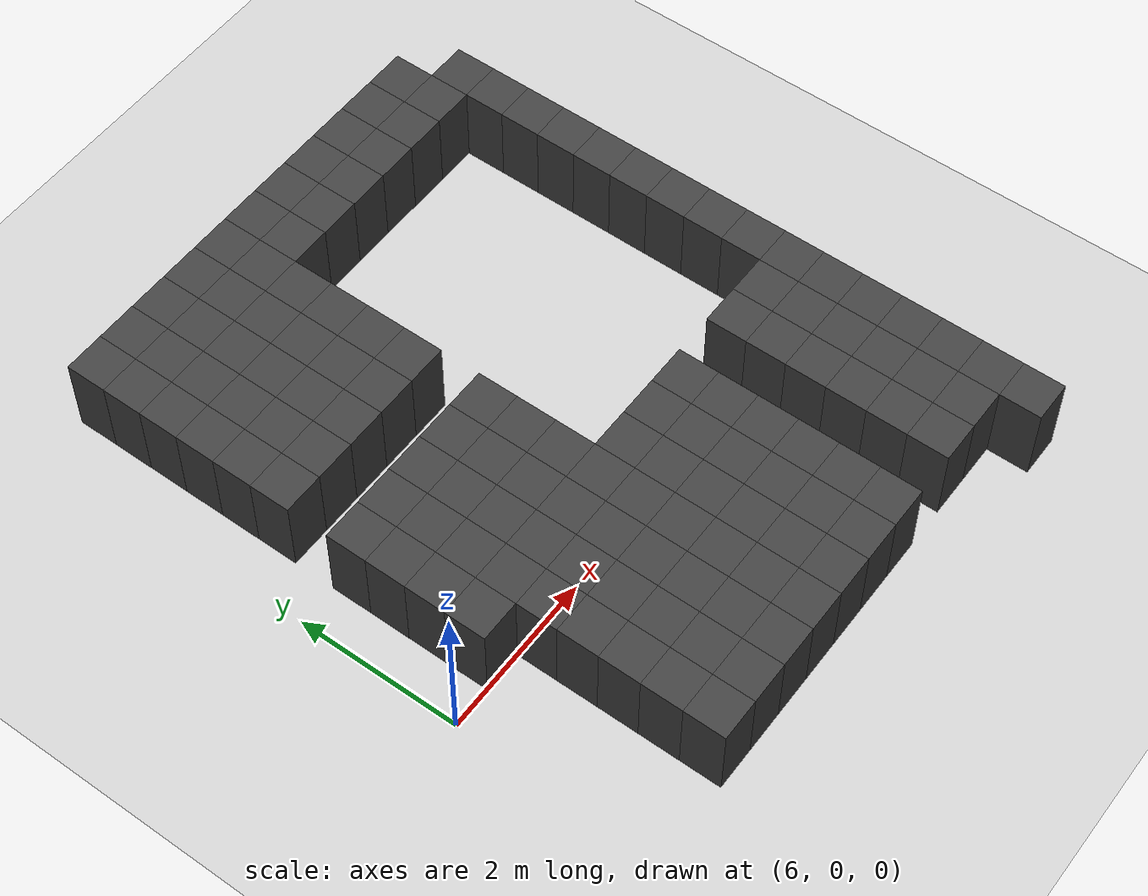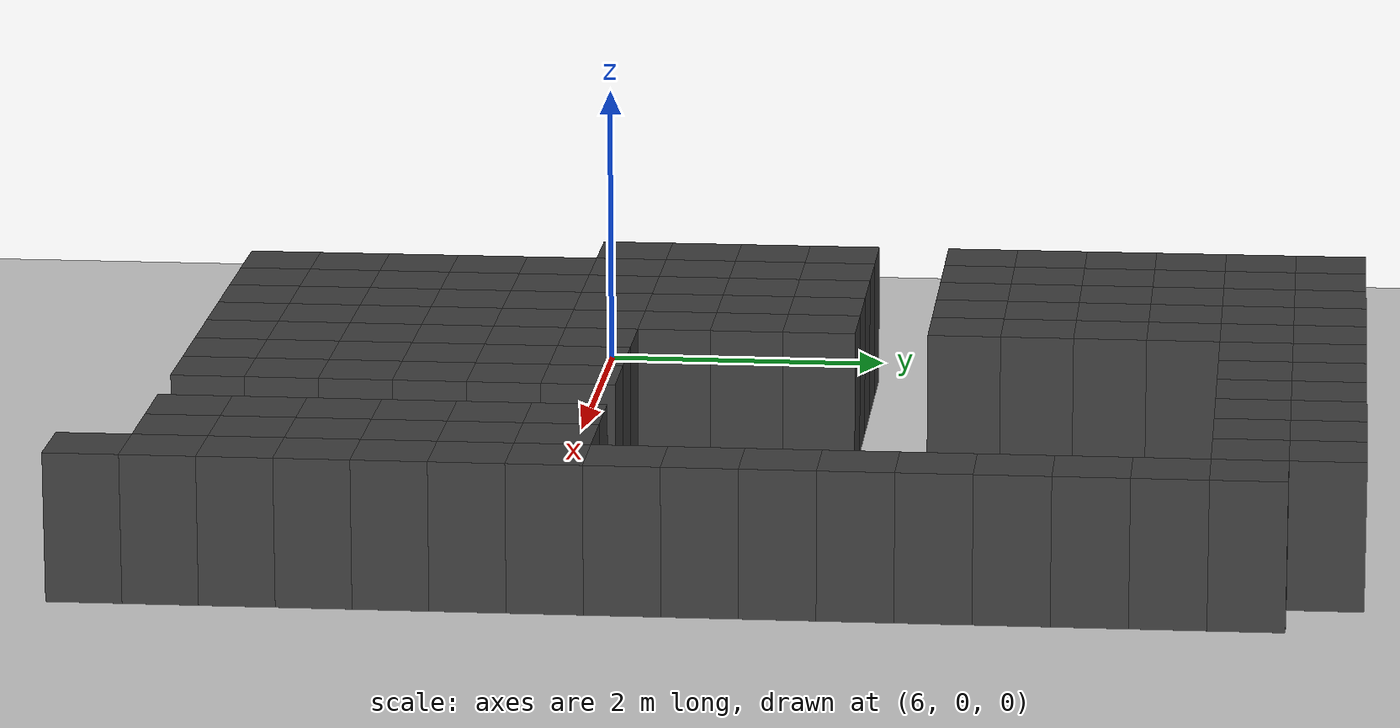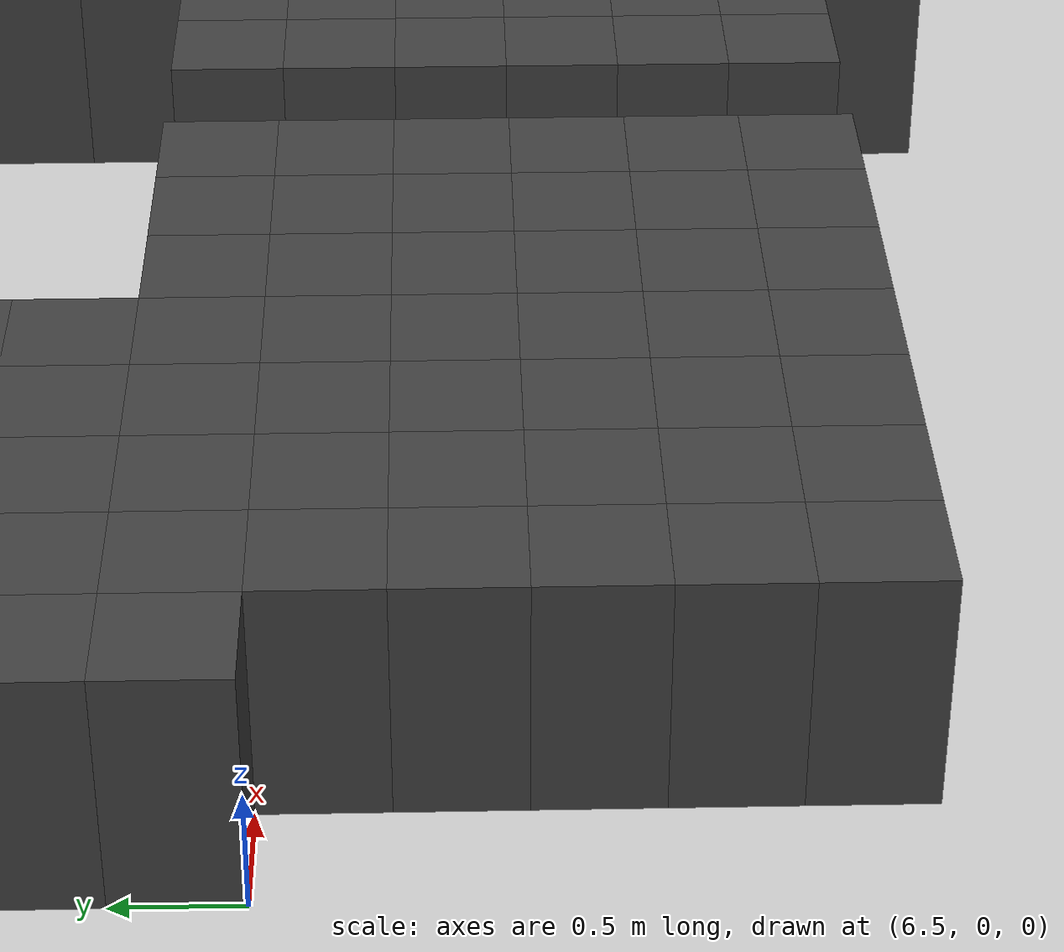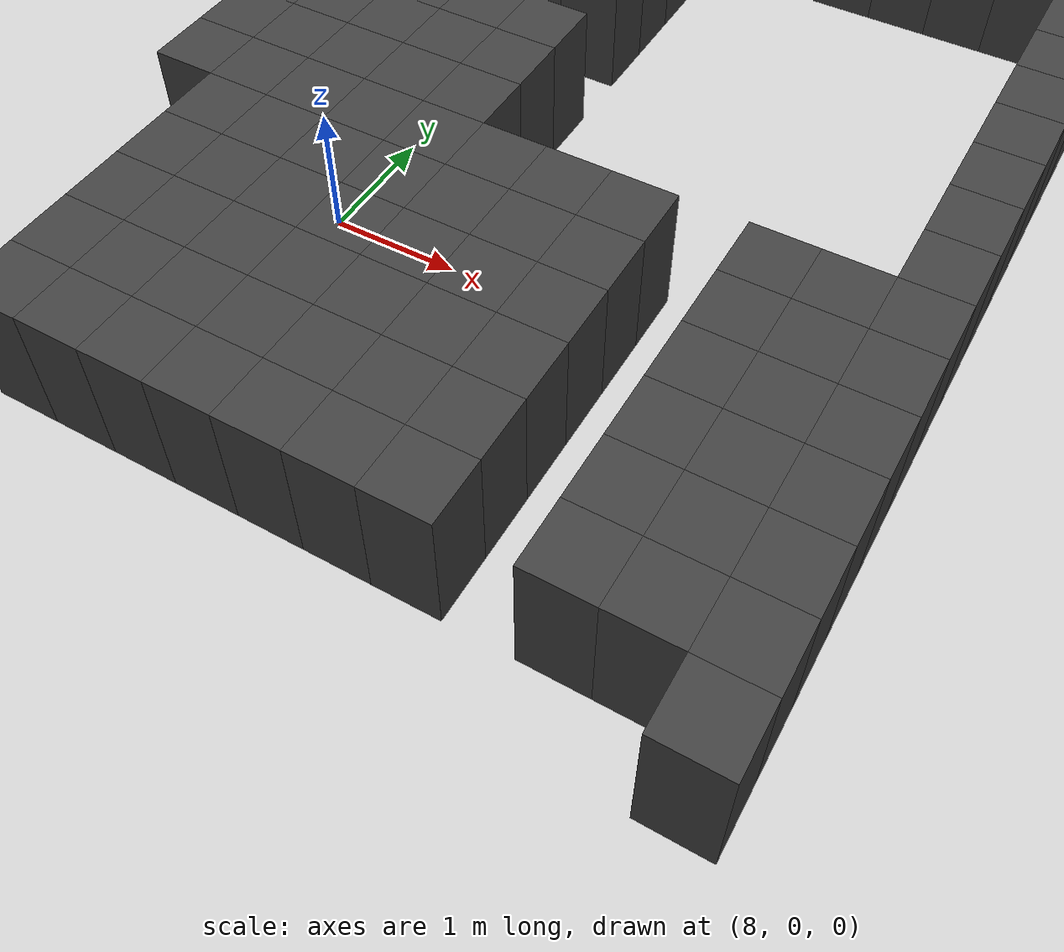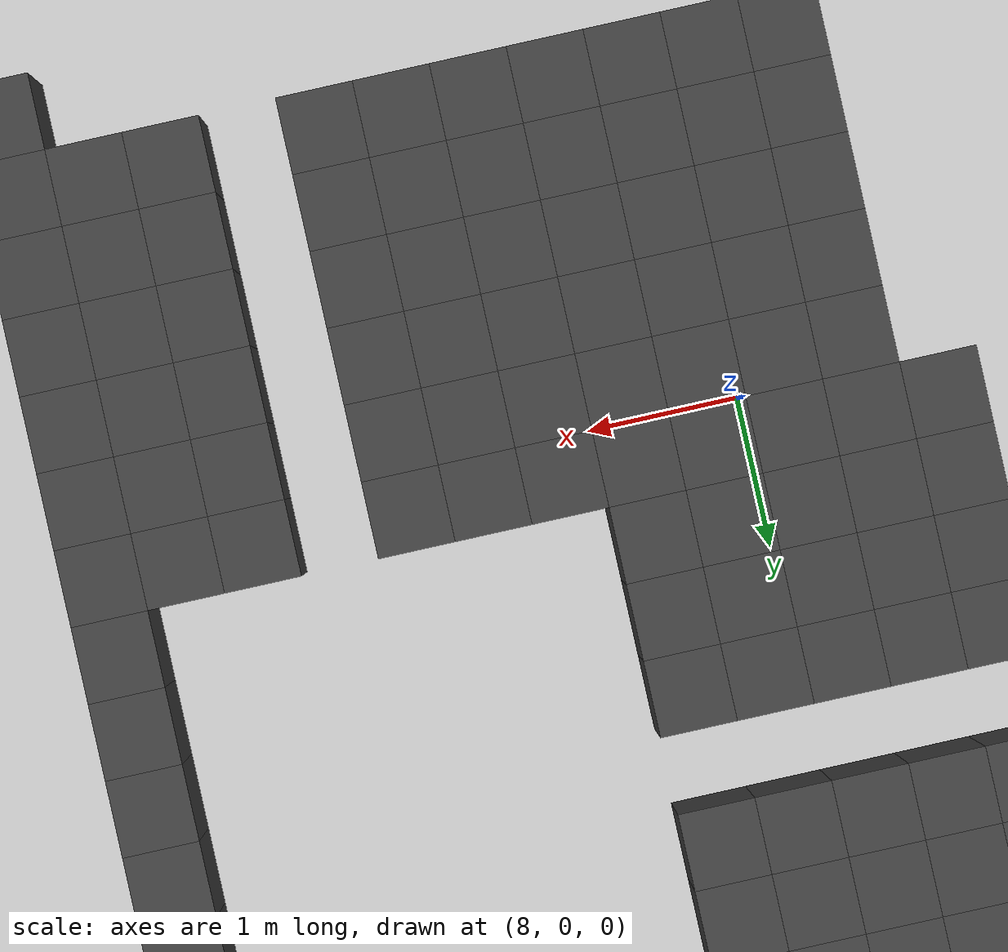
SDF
<sdf version="1.7">
 <world name="map_14735">
  <model name="ground_plane">
   <static>true</static>
   <link name="link">
    <collision name="collision">
     <geometry><plane><normal>0 0 1</normal><size>200 200</size></plane></geometry>
    </collision>
    <visual name="visual">
     <geometry><plane><normal>0 0 1</normal><size>200 200</size></plane></geometry>
     <material><ambient>0.8 0.8 0.8 1</ambient><diffuse>0.8 0.8 0.8 1</diffuse></material>
    </visual>
   </link>
  </model>
  <model name="maze_environment">
   <static>true</static>
   <link name="wall_448">
    <pose>6.750 5.250 0.500 0 0 0</pose>
    <collision name="col"><geometry><box><size>0.5 0.5 1.0</size></box></geometry></collision>
    <visual name="vis">
     <geometry><box><size>0.5 0.5 1.0</size></box></geometry>
     <material><ambient>0.15 0.15 0.15 1</ambient><diffuse>0.25 0.25 0.25 1</diffuse></material>
    </visual>
   </link>
   <link name="wall_449">
    <pose>7.250 5.250 0.500 0 0 0</pose>
    <collision name="col"><geometry><box><size>0.5 0.5 1.0</size></box></geometry></collision>
    <visual name="vis">
     <geometry><box><size>0.5 0.5 1.0</size></box></geometry>
     <material><ambient>0.15 0.15 0.15 1</ambient><diffuse>0.25 0.25 0.25 1</diffuse></material>
    </visual>
   </link>
   <link name="wall_450">
    <pose>7.750 5.250 0.500 0 0 0</pose>
    <collision name="col"><geometry><box><size>0.5 0.5 1.0</size></box></geometry></collision>
    <visual name="vis">
     <geometry><box><size>0.5 0.5 1.0</size></box></geometry>
     <material><ambient>0.15 0.15 0.15 1</ambient><diffuse>0.25 0.25 0.25 1</diffuse></material>
    </visual>
   </link>
   <link name="wall_451">
    <pose>8.250 5.250 0.500 0 0 0</pose>
    <collision name="col"><geometry><box><size>0.5 0.5 1.0</size></box></geometry></collision>
    <visual name="vis">
     <geometry><box><size>0.5 0.5 1.0</size></box></geometry>
     <material><ambient>0.15 0.15 0.15 1</ambient><diffuse>0.25 0.25 0.25 1</diffuse></material>
    </visual>
   </link>
   <link name="wall_452">
    <pose>8.750 5.250 0.500 0 0 0</pose>
    <collision name="col"><geometry><box><size>0.5 0.5 1.0</size></box></geometry></collision>
    <visual name="vis">
     <geometry><box><size>0.5 0.5 1.0</size></box></geometry>
     <material><ambient>0.15 0.15 0.15 1</ambient><diffuse>0.25 0.25 0.25 1</diffuse></material>
    </visual>
   </link>
   <link name="wall_453">
    <pose>9.250 5.250 0.500 0 0 0</pose>
    <collision name="col"><geometry><box><size>0.5 0.5 1.0</size></box></geometry></collision>
    <visual name="vis">
     <geometry><box><size>0.5 0.5 1.0</size></box></geometry>
     <material><ambient>0.15 0.15 0.15 1</ambient><diffuse>0.25 0.25 0.25 1</diffuse></material>
    </visual>
   </link>
   <link name="wall_454">
    <pose>9.750 5.250 0.500 0 0 0</pose>
    <collision name="col"><geometry><box><size>0.5 0.5 1.0</size></box></geometry></collision>
    <visual name="vis">
     <geometry><box><size>0.5 0.5 1.0</size></box></geometry>
     <material><ambient>0.15 0.15 0.15 1</ambient><diffuse>0.25 0.25 0.25 1</diffuse></material>
    </visual>
   </link>
   <link name="wall_455">
    <pose>10.250 5.250 0.500 0 0 0</pose>
    <collision name="col"><geometry><box><size>0.5 0.5 1.0</size></box></geometry></collision>
    <visual name="vis">
     <geometry><box><size>0.5 0.5 1.0</size></box></geometry>
     <material><ambient>0.15 0.15 0.15 1</ambient><diffuse>0.25 0.25 0.25 1</diffuse></material>
    </visual>
   </link>
   <link name="wall_456">
    <pose>10.750 5.250 0.500 0 0 0</pose>
    <collision name="col"><geometry><box><size>0.5 0.5 1.0</size></box></geometry></collision>
    <visual name="vis">
     <geometry><box><size>0.5 0.5 1.0</size></box></geometry>
     <material><ambient>0.15 0.15 0.15 1</ambient><diffuse>0.25 0.25 0.25 1</diffuse></material>
    </visual>
   </link>
   <link name="wall_457">
    <pose>11.250 5.250 0.500 0 0 0</pose>
    <collision name="col"><geometry><box><size>0.5 0.5 1.0</size></box></geometry></collision>
    <visual name="vis">
     <geometry><box><size>0.5 0.5 1.0</size></box></geometry>
     <material><ambient>0.15 0.15 0.15 1</ambient><diffuse>0.25 0.25 0.25 1</diffuse></material>
    </visual>
   </link>
   <link name="wall_458">
    <pose>11.750 5.250 0.500 0 0 0</pose>
    <collision name="col"><geometry><box><size>0.5 0.5 1.0</size></box></geometry></collision>
    <visual name="vis">
     <geometry><box><size>0.5 0.5 1.0</size></box></geometry>
     <material><ambient>0.15 0.15 0.15 1</ambient><diffuse>0.25 0.25 0.25 1</diffuse></material>
    </visual>
   </link>
   <link name="wall_488">
    <pose>6.750 4.750 0.500 0 0 0</pose>
    <collision name="col"><geometry><box><size>0.5 0.5 1.0</size></box></geometry></collision>
    <visual name="vis">
     <geometry><box><size>0.5 0.5 1.0</size></box></geometry>
     <material><ambient>0.15 0.15 0.15 1</ambient><diffuse>0.25 0.25 0.25 1</diffuse></material>
    </visual>
   </link>
   <link name="wall_489">
    <pose>7.250 4.750 0.500 0 0 0</pose>
    <collision name="col"><geometry><box><size>0.5 0.5 1.0</size></box></geometry></collision>
    <visual name="vis">
     <geometry><box><size>0.5 0.5 1.0</size></box></geometry>
     <material><ambient>0.15 0.15 0.15 1</ambient><diffuse>0.25 0.25 0.25 1</diffuse></material>
    </visual>
   </link>
   <link name="wall_490">
    <pose>7.750 4.750 0.500 0 0 0</pose>
    <collision name="col"><geometry><box><size>0.5 0.5 1.0</size></box></geometry></collision>
    <visual name="vis">
     <geometry><box><size>0.5 0.5 1.0</size></box></geometry>
     <material><ambient>0.15 0.15 0.15 1</ambient><diffuse>0.25 0.25 0.25 1</diffuse></material>
    </visual>
   </link>
   <link name="wall_491">
    <pose>8.250 4.750 0.500 0 0 0</pose>
    <collision name="col"><geometry><box><size>0.5 0.5 1.0</size></box></geometry></collision>
    <visual name="vis">
     <geometry><box><size>0.5 0.5 1.0</size></box></geometry>
     <material><ambient>0.15 0.15 0.15 1</ambient><diffuse>0.25 0.25 0.25 1</diffuse></material>
    </visual>
   </link>
   <link name="wall_492">
    <pose>8.750 4.750 0.500 0 0 0</pose>
    <collision name="col"><geometry><box><size>0.5 0.5 1.0</size></box></geometry></collision>
    <visual name="vis">
     <geometry><box><size>0.5 0.5 1.0</size></box></geometry>
     <material><ambient>0.15 0.15 0.15 1</ambient><diffuse>0.25 0.25 0.25 1</diffuse></material>
    </visual>
   </link>
   <link name="wall_493">
    <pose>9.250 4.750 0.500 0 0 0</pose>
    <collision name="col"><geometry><box><size>0.5 0.5 1.0</size></box></geometry></collision>
    <visual name="vis">
     <geometry><box><size>0.5 0.5 1.0</size></box></geometry>
     <material><ambient>0.15 0.15 0.15 1</ambient><diffuse>0.25 0.25 0.25 1</diffuse></material>
    </visual>
   </link>
   <link name="wall_494">
    <pose>9.750 4.750 0.500 0 0 0</pose>
    <collision name="col"><geometry><box><size>0.5 0.5 1.0</size></box></geometry></collision>
    <visual name="vis">
     <geometry><box><size>0.5 0.5 1.0</size></box></geometry>
     <material><ambient>0.15 0.15 0.15 1</ambient><diffuse>0.25 0.25 0.25 1</diffuse></material>
    </visual>
   </link>
   <link name="wall_495">
    <pose>10.250 4.750 0.500 0 0 0</pose>
    <collision name="col"><geometry><box><size>0.5 0.5 1.0</size></box></geometry></collision>
    <visual name="vis">
     <geometry><box><size>0.5 0.5 1.0</size></box></geometry>
     <material><ambient>0.15 0.15 0.15 1</ambient><diffuse>0.25 0.25 0.25 1</diffuse></material>
    </visual>
   </link>
   <link name="wall_496">
    <pose>10.750 4.750 0.500 0 0 0</pose>
    <collision name="col"><geometry><box><size>0.5 0.5 1.0</size></box></geometry></collision>
    <visual name="vis">
     <geometry><box><size>0.5 0.5 1.0</size></box></geometry>
     <material><ambient>0.15 0.15 0.15 1</ambient><diffuse>0.25 0.25 0.25 1</diffuse></material>
    </visual>
   </link>
   <link name="wall_497">
    <pose>11.250 4.750 0.500 0 0 0</pose>
    <collision name="col"><geometry><box><size>0.5 0.5 1.0</size></box></geometry></collision>
    <visual name="vis">
     <geometry><box><size>0.5 0.5 1.0</size></box></geometry>
     <material><ambient>0.15 0.15 0.15 1</ambient><diffuse>0.25 0.25 0.25 1</diffuse></material>
    </visual>
   </link>
   <link name="wall_498">
    <pose>11.750 4.750 0.500 0 0 0</pose>
    <collision name="col"><geometry><box><size>0.5 0.5 1.0</size></box></geometry></collision>
    <visual name="vis">
     <geometry><box><size>0.5 0.5 1.0</size></box></geometry>
     <material><ambient>0.15 0.15 0.15 1</ambient><diffuse>0.25 0.25 0.25 1</diffuse></material>
    </visual>
   </link>
   <link name="wall_499">
    <pose>12.250 4.750 0.500 0 0 0</pose>
    <collision name="col"><geometry><box><size>0.5 0.5 1.0</size></box></geometry></collision>
    <visual name="vis">
     <geometry><box><size>0.5 0.5 1.0</size></box></geometry>
     <material><ambient>0.15 0.15 0.15 1</ambient><diffuse>0.25 0.25 0.25 1</diffuse></material>
    </visual>
   </link>
   <link name="wall_525">
    <pose>6.750 4.250 0.500 0 0 0</pose>
    <collision name="col"><geometry><box><size>0.5 0.5 1.0</size></box></geometry></collision>
    <visual name="vis">
     <geometry><box><size>0.5 0.5 1.0</size></box></geometry>
     <material><ambient>0.15 0.15 0.15 1</ambient><diffuse>0.25 0.25 0.25 1</diffuse></material>
    </visual>
   </link>
   <link name="wall_526">
    <pose>7.250 4.250 0.500 0 0 0</pose>
    <collision name="col"><geometry><box><size>0.5 0.5 1.0</size></box></geometry></collision>
    <visual name="vis">
     <geometry><box><size>0.5 0.5 1.0</size></box></geometry>
     <material><ambient>0.15 0.15 0.15 1</ambient><diffuse>0.25 0.25 0.25 1</diffuse></material>
    </visual>
   </link>
   <link name="wall_527">
    <pose>7.750 4.250 0.500 0 0 0</pose>
    <collision name="col"><geometry><box><size>0.5 0.5 1.0</size></box></geometry></collision>
    <visual name="vis">
     <geometry><box><size>0.5 0.5 1.0</size></box></geometry>
     <material><ambient>0.15 0.15 0.15 1</ambient><diffuse>0.25 0.25 0.25 1</diffuse></material>
    </visual>
   </link>
   <link name="wall_528">
    <pose>8.250 4.250 0.500 0 0 0</pose>
    <collision name="col"><geometry><box><size>0.5 0.5 1.0</size></box></geometry></collision>
    <visual name="vis">
     <geometry><box><size>0.5 0.5 1.0</size></box></geometry>
     <material><ambient>0.15 0.15 0.15 1</ambient><diffuse>0.25 0.25 0.25 1</diffuse></material>
    </visual>
   </link>
   <link name="wall_529">
    <pose>8.750 4.250 0.500 0 0 0</pose>
    <collision name="col"><geometry><box><size>0.5 0.5 1.0</size></box></geometry></collision>
    <visual name="vis">
     <geometry><box><size>0.5 0.5 1.0</size></box></geometry>
     <material><ambient>0.15 0.15 0.15 1</ambient><diffuse>0.25 0.25 0.25 1</diffuse></material>
    </visual>
   </link>
   <link name="wall_530">
    <pose>12.250 4.250 0.500 0 0 0</pose>
    <collision name="col"><geometry><box><size>0.5 0.5 1.0</size></box></geometry></collision>
    <visual name="vis">
     <geometry><box><size>0.5 0.5 1.0</size></box></geometry>
     <material><ambient>0.15 0.15 0.15 1</ambient><diffuse>0.25 0.25 0.25 1</diffuse></material>
    </visual>
   </link>
   <link name="wall_556">
    <pose>6.750 3.750 0.500 0 0 0</pose>
    <collision name="col"><geometry><box><size>0.5 0.5 1.0</size></box></geometry></collision>
    <visual name="vis">
     <geometry><box><size>0.5 0.5 1.0</size></box></geometry>
     <material><ambient>0.15 0.15 0.15 1</ambient><diffuse>0.25 0.25 0.25 1</diffuse></material>
    </visual>
   </link>
   <link name="wall_557">
    <pose>7.250 3.750 0.500 0 0 0</pose>
    <collision name="col"><geometry><box><size>0.5 0.5 1.0</size></box></geometry></collision>
    <visual name="vis">
     <geometry><box><size>0.5 0.5 1.0</size></box></geometry>
     <material><ambient>0.15 0.15 0.15 1</ambient><diffuse>0.25 0.25 0.25 1</diffuse></material>
    </visual>
   </link>
   <link name="wall_558">
    <pose>7.750 3.750 0.500 0 0 0</pose>
    <collision name="col"><geometry><box><size>0.5 0.5 1.0</size></box></geometry></collision>
    <visual name="vis">
     <geometry><box><size>0.5 0.5 1.0</size></box></geometry>
     <material><ambient>0.15 0.15 0.15 1</ambient><diffuse>0.25 0.25 0.25 1</diffuse></material>
    </visual>
   </link>
   <link name="wall_559">
    <pose>8.250 3.750 0.500 0 0 0</pose>
    <collision name="col"><geometry><box><size>0.5 0.5 1.0</size></box></geometry></collision>
    <visual name="vis">
     <geometry><box><size>0.5 0.5 1.0</size></box></geometry>
     <material><ambient>0.15 0.15 0.15 1</ambient><diffuse>0.25 0.25 0.25 1</diffuse></material>
    </visual>
   </link>
   <link name="wall_560">
    <pose>8.750 3.750 0.500 0 0 0</pose>
    <collision name="col"><geometry><box><size>0.5 0.5 1.0</size></box></geometry></collision>
    <visual name="vis">
     <geometry><box><size>0.5 0.5 1.0</size></box></geometry>
     <material><ambient>0.15 0.15 0.15 1</ambient><diffuse>0.25 0.25 0.25 1</diffuse></material>
    </visual>
   </link>
   <link name="wall_561">
    <pose>12.250 3.750 0.500 0 0 0</pose>
    <collision name="col"><geometry><box><size>0.5 0.5 1.0</size></box></geometry></collision>
    <visual name="vis">
     <geometry><box><size>0.5 0.5 1.0</size></box></geometry>
     <material><ambient>0.15 0.15 0.15 1</ambient><diffuse>0.25 0.25 0.25 1</diffuse></material>
    </visual>
   </link>
   <link name="wall_584">
    <pose>6.750 3.250 0.500 0 0 0</pose>
    <collision name="col"><geometry><box><size>0.5 0.5 1.0</size></box></geometry></collision>
    <visual name="vis">
     <geometry><box><size>0.5 0.5 1.0</size></box></geometry>
     <material><ambient>0.15 0.15 0.15 1</ambient><diffuse>0.25 0.25 0.25 1</diffuse></material>
    </visual>
   </link>
   <link name="wall_585">
    <pose>7.250 3.250 0.500 0 0 0</pose>
    <collision name="col"><geometry><box><size>0.5 0.5 1.0</size></box></geometry></collision>
    <visual name="vis">
     <geometry><box><size>0.5 0.5 1.0</size></box></geometry>
     <material><ambient>0.15 0.15 0.15 1</ambient><diffuse>0.25 0.25 0.25 1</diffuse></material>
    </visual>
   </link>
   <link name="wall_586">
    <pose>7.750 3.250 0.500 0 0 0</pose>
    <collision name="col"><geometry><box><size>0.5 0.5 1.0</size></box></geometry></collision>
    <visual name="vis">
     <geometry><box><size>0.5 0.5 1.0</size></box></geometry>
     <material><ambient>0.15 0.15 0.15 1</ambient><diffuse>0.25 0.25 0.25 1</diffuse></material>
    </visual>
   </link>
   <link name="wall_587">
    <pose>8.250 3.250 0.500 0 0 0</pose>
    <collision name="col"><geometry><box><size>0.5 0.5 1.0</size></box></geometry></collision>
    <visual name="vis">
     <geometry><box><size>0.5 0.5 1.0</size></box></geometry>
     <material><ambient>0.15 0.15 0.15 1</ambient><diffuse>0.25 0.25 0.25 1</diffuse></material>
    </visual>
   </link>
   <link name="wall_588">
    <pose>8.750 3.250 0.500 0 0 0</pose>
    <collision name="col"><geometry><box><size>0.5 0.5 1.0</size></box></geometry></collision>
    <visual name="vis">
     <geometry><box><size>0.5 0.5 1.0</size></box></geometry>
     <material><ambient>0.15 0.15 0.15 1</ambient><diffuse>0.25 0.25 0.25 1</diffuse></material>
    </visual>
   </link>
   <link name="wall_589">
    <pose>12.250 3.250 0.500 0 0 0</pose>
    <collision name="col"><geometry><box><size>0.5 0.5 1.0</size></box></geometry></collision>
    <visual name="vis">
     <geometry><box><size>0.5 0.5 1.0</size></box></geometry>
     <material><ambient>0.15 0.15 0.15 1</ambient><diffuse>0.25 0.25 0.25 1</diffuse></material>
    </visual>
   </link>
   <link name="wall_612">
    <pose>6.750 2.750 0.500 0 0 0</pose>
    <collision name="col"><geometry><box><size>0.5 0.5 1.0</size></box></geometry></collision>
    <visual name="vis">
     <geometry><box><size>0.5 0.5 1.0</size></box></geometry>
     <material><ambient>0.15 0.15 0.15 1</ambient><diffuse>0.25 0.25 0.25 1</diffuse></material>
    </visual>
   </link>
   <link name="wall_613">
    <pose>7.250 2.750 0.500 0 0 0</pose>
    <collision name="col"><geometry><box><size>0.5 0.5 1.0</size></box></geometry></collision>
    <visual name="vis">
     <geometry><box><size>0.5 0.5 1.0</size></box></geometry>
     <material><ambient>0.15 0.15 0.15 1</ambient><diffuse>0.25 0.25 0.25 1</diffuse></material>
    </visual>
   </link>
   <link name="wall_614">
    <pose>7.750 2.750 0.500 0 0 0</pose>
    <collision name="col"><geometry><box><size>0.5 0.5 1.0</size></box></geometry></collision>
    <visual name="vis">
     <geometry><box><size>0.5 0.5 1.0</size></box></geometry>
     <material><ambient>0.15 0.15 0.15 1</ambient><diffuse>0.25 0.25 0.25 1</diffuse></material>
    </visual>
   </link>
   <link name="wall_615">
    <pose>8.250 2.750 0.500 0 0 0</pose>
    <collision name="col"><geometry><box><size>0.5 0.5 1.0</size></box></geometry></collision>
    <visual name="vis">
     <geometry><box><size>0.5 0.5 1.0</size></box></geometry>
     <material><ambient>0.15 0.15 0.15 1</ambient><diffuse>0.25 0.25 0.25 1</diffuse></material>
    </visual>
   </link>
   <link name="wall_616">
    <pose>8.750 2.750 0.500 0 0 0</pose>
    <collision name="col"><geometry><box><size>0.5 0.5 1.0</size></box></geometry></collision>
    <visual name="vis">
     <geometry><box><size>0.5 0.5 1.0</size></box></geometry>
     <material><ambient>0.15 0.15 0.15 1</ambient><diffuse>0.25 0.25 0.25 1</diffuse></material>
    </visual>
   </link>
   <link name="wall_617">
    <pose>12.250 2.750 0.500 0 0 0</pose>
    <collision name="col"><geometry><box><size>0.5 0.5 1.0</size></box></geometry></collision>
    <visual name="vis">
     <geometry><box><size>0.5 0.5 1.0</size></box></geometry>
     <material><ambient>0.15 0.15 0.15 1</ambient><diffuse>0.25 0.25 0.25 1</diffuse></material>
    </visual>
   </link>
   <link name="wall_636">
    <pose>12.250 2.250 0.500 0 0 0</pose>
    <collision name="col"><geometry><box><size>0.5 0.5 1.0</size></box></geometry></collision>
    <visual name="vis">
     <geometry><box><size>0.5 0.5 1.0</size></box></geometry>
     <material><ambient>0.15 0.15 0.15 1</ambient><diffuse>0.25 0.25 0.25 1</diffuse></material>
    </visual>
   </link>
   <link name="wall_657">
    <pose>6.750 1.750 0.500 0 0 0</pose>
    <collision name="col"><geometry><box><size>0.5 0.5 1.0</size></box></geometry></collision>
    <visual name="vis">
     <geometry><box><size>0.5 0.5 1.0</size></box></geometry>
     <material><ambient>0.15 0.15 0.15 1</ambient><diffuse>0.25 0.25 0.25 1</diffuse></material>
    </visual>
   </link>
   <link name="wall_658">
    <pose>7.250 1.750 0.500 0 0 0</pose>
    <collision name="col"><geometry><box><size>0.5 0.5 1.0</size></box></geometry></collision>
    <visual name="vis">
     <geometry><box><size>0.5 0.5 1.0</size></box></geometry>
     <material><ambient>0.15 0.15 0.15 1</ambient><diffuse>0.25 0.25 0.25 1</diffuse></material>
    </visual>
   </link>
   <link name="wall_659">
    <pose>7.750 1.750 0.500 0 0 0</pose>
    <collision name="col"><geometry><box><size>0.5 0.5 1.0</size></box></geometry></collision>
    <visual name="vis">
     <geometry><box><size>0.5 0.5 1.0</size></box></geometry>
     <material><ambient>0.15 0.15 0.15 1</ambient><diffuse>0.25 0.25 0.25 1</diffuse></material>
    </visual>
   </link>
   <link name="wall_660">
    <pose>8.250 1.750 0.500 0 0 0</pose>
    <collision name="col"><geometry><box><size>0.5 0.5 1.0</size></box></geometry></collision>
    <visual name="vis">
     <geometry><box><size>0.5 0.5 1.0</size></box></geometry>
     <material><ambient>0.15 0.15 0.15 1</ambient><diffuse>0.25 0.25 0.25 1</diffuse></material>
    </visual>
   </link>
   <link name="wall_661">
    <pose>8.750 1.750 0.500 0 0 0</pose>
    <collision name="col"><geometry><box><size>0.5 0.5 1.0</size></box></geometry></collision>
    <visual name="vis">
     <geometry><box><size>0.5 0.5 1.0</size></box></geometry>
     <material><ambient>0.15 0.15 0.15 1</ambient><diffuse>0.25 0.25 0.25 1</diffuse></material>
    </visual>
   </link>
   <link name="wall_662">
    <pose>12.250 1.750 0.500 0 0 0</pose>
    <collision name="col"><geometry><box><size>0.5 0.5 1.0</size></box></geometry></collision>
    <visual name="vis">
     <geometry><box><size>0.5 0.5 1.0</size></box></geometry>
     <material><ambient>0.15 0.15 0.15 1</ambient><diffuse>0.25 0.25 0.25 1</diffuse></material>
    </visual>
   </link>
   <link name="wall_683">
    <pose>6.750 1.250 0.500 0 0 0</pose>
    <collision name="col"><geometry><box><size>0.5 0.5 1.0</size></box></geometry></collision>
    <visual name="vis">
     <geometry><box><size>0.5 0.5 1.0</size></box></geometry>
     <material><ambient>0.15 0.15 0.15 1</ambient><diffuse>0.25 0.25 0.25 1</diffuse></material>
    </visual>
   </link>
   <link name="wall_684">
    <pose>7.250 1.250 0.500 0 0 0</pose>
    <collision name="col"><geometry><box><size>0.5 0.5 1.0</size></box></geometry></collision>
    <visual name="vis">
     <geometry><box><size>0.5 0.5 1.0</size></box></geometry>
     <material><ambient>0.15 0.15 0.15 1</ambient><diffuse>0.25 0.25 0.25 1</diffuse></material>
    </visual>
   </link>
   <link name="wall_685">
    <pose>7.750 1.250 0.500 0 0 0</pose>
    <collision name="col"><geometry><box><size>0.5 0.5 1.0</size></box></geometry></collision>
    <visual name="vis">
     <geometry><box><size>0.5 0.5 1.0</size></box></geometry>
     <material><ambient>0.15 0.15 0.15 1</ambient><diffuse>0.25 0.25 0.25 1</diffuse></material>
    </visual>
   </link>
   <link name="wall_686">
    <pose>8.250 1.250 0.500 0 0 0</pose>
    <collision name="col"><geometry><box><size>0.5 0.5 1.0</size></box></geometry></collision>
    <visual name="vis">
     <geometry><box><size>0.5 0.5 1.0</size></box></geometry>
     <material><ambient>0.15 0.15 0.15 1</ambient><diffuse>0.25 0.25 0.25 1</diffuse></material>
    </visual>
   </link>
   <link name="wall_687">
    <pose>8.750 1.250 0.500 0 0 0</pose>
    <collision name="col"><geometry><box><size>0.5 0.5 1.0</size></box></geometry></collision>
    <visual name="vis">
     <geometry><box><size>0.5 0.5 1.0</size></box></geometry>
     <material><ambient>0.15 0.15 0.15 1</ambient><diffuse>0.25 0.25 0.25 1</diffuse></material>
    </visual>
   </link>
   <link name="wall_688">
    <pose>12.250 1.250 0.500 0 0 0</pose>
    <collision name="col"><geometry><box><size>0.5 0.5 1.0</size></box></geometry></collision>
    <visual name="vis">
     <geometry><box><size>0.5 0.5 1.0</size></box></geometry>
     <material><ambient>0.15 0.15 0.15 1</ambient><diffuse>0.25 0.25 0.25 1</diffuse></material>
    </visual>
   </link>
   <link name="wall_708">
    <pose>6.750 0.750 0.500 0 0 0</pose>
    <collision name="col"><geometry><box><size>0.5 0.5 1.0</size></box></geometry></collision>
    <visual name="vis">
     <geometry><box><size>0.5 0.5 1.0</size></box></geometry>
     <material><ambient>0.15 0.15 0.15 1</ambient><diffuse>0.25 0.25 0.25 1</diffuse></material>
    </visual>
   </link>
   <link name="wall_709">
    <pose>7.250 0.750 0.500 0 0 0</pose>
    <collision name="col"><geometry><box><size>0.5 0.5 1.0</size></box></geometry></collision>
    <visual name="vis">
     <geometry><box><size>0.5 0.5 1.0</size></box></geometry>
     <material><ambient>0.15 0.15 0.15 1</ambient><diffuse>0.25 0.25 0.25 1</diffuse></material>
    </visual>
   </link>
   <link name="wall_710">
    <pose>7.750 0.750 0.500 0 0 0</pose>
    <collision name="col"><geometry><box><size>0.5 0.5 1.0</size></box></geometry></collision>
    <visual name="vis">
     <geometry><box><size>0.5 0.5 1.0</size></box></geometry>
     <material><ambient>0.15 0.15 0.15 1</ambient><diffuse>0.25 0.25 0.25 1</diffuse></material>
    </visual>
   </link>
   <link name="wall_711">
    <pose>8.250 0.750 0.500 0 0 0</pose>
    <collision name="col"><geometry><box><size>0.5 0.5 1.0</size></box></geometry></collision>
    <visual name="vis">
     <geometry><box><size>0.5 0.5 1.0</size></box></geometry>
     <material><ambient>0.15 0.15 0.15 1</ambient><diffuse>0.25 0.25 0.25 1</diffuse></material>
    </visual>
   </link>
   <link name="wall_712">
    <pose>8.750 0.750 0.500 0 0 0</pose>
    <collision name="col"><geometry><box><size>0.5 0.5 1.0</size></box></geometry></collision>
    <visual name="vis">
     <geometry><box><size>0.5 0.5 1.0</size></box></geometry>
     <material><ambient>0.15 0.15 0.15 1</ambient><diffuse>0.25 0.25 0.25 1</diffuse></material>
    </visual>
   </link>
   <link name="wall_713">
    <pose>12.250 0.750 0.500 0 0 0</pose>
    <collision name="col"><geometry><box><size>0.5 0.5 1.0</size></box></geometry></collision>
    <visual name="vis">
     <geometry><box><size>0.5 0.5 1.0</size></box></geometry>
     <material><ambient>0.15 0.15 0.15 1</ambient><diffuse>0.25 0.25 0.25 1</diffuse></material>
    </visual>
   </link>
   <link name="wall_735">
    <pose>6.750 0.250 0.500 0 0 0</pose>
    <collision name="col"><geometry><box><size>0.5 0.5 1.0</size></box></geometry></collision>
    <visual name="vis">
     <geometry><box><size>0.5 0.5 1.0</size></box></geometry>
     <material><ambient>0.15 0.15 0.15 1</ambient><diffuse>0.25 0.25 0.25 1</diffuse></material>
    </visual>
   </link>
   <link name="wall_736">
    <pose>7.250 0.250 0.500 0 0 0</pose>
    <collision name="col"><geometry><box><size>0.5 0.5 1.0</size></box></geometry></collision>
    <visual name="vis">
     <geometry><box><size>0.5 0.5 1.0</size></box></geometry>
     <material><ambient>0.15 0.15 0.15 1</ambient><diffuse>0.25 0.25 0.25 1</diffuse></material>
    </visual>
   </link>
   <link name="wall_737">
    <pose>7.750 0.250 0.500 0 0 0</pose>
    <collision name="col"><geometry><box><size>0.5 0.5 1.0</size></box></geometry></collision>
    <visual name="vis">
     <geometry><box><size>0.5 0.5 1.0</size></box></geometry>
     <material><ambient>0.15 0.15 0.15 1</ambient><diffuse>0.25 0.25 0.25 1</diffuse></material>
    </visual>
   </link>
   <link name="wall_738">
    <pose>8.250 0.250 0.500 0 0 0</pose>
    <collision name="col"><geometry><box><size>0.5 0.5 1.0</size></box></geometry></collision>
    <visual name="vis">
     <geometry><box><size>0.5 0.5 1.0</size></box></geometry>
     <material><ambient>0.15 0.15 0.15 1</ambient><diffuse>0.25 0.25 0.25 1</diffuse></material>
    </visual>
   </link>
   <link name="wall_739">
    <pose>8.750 0.250 0.500 0 0 0</pose>
    <collision name="col"><geometry><box><size>0.5 0.5 1.0</size></box></geometry></collision>
    <visual name="vis">
     <geometry><box><size>0.5 0.5 1.0</size></box></geometry>
     <material><ambient>0.15 0.15 0.15 1</ambient><diffuse>0.25 0.25 0.25 1</diffuse></material>
    </visual>
   </link>
   <link name="wall_740">
    <pose>9.250 0.250 0.500 0 0 0</pose>
    <collision name="col"><geometry><box><size>0.5 0.5 1.0</size></box></geometry></collision>
    <visual name="vis">
     <geometry><box><size>0.5 0.5 1.0</size></box></geometry>
     <material><ambient>0.15 0.15 0.15 1</ambient><diffuse>0.25 0.25 0.25 1</diffuse></material>
    </visual>
   </link>
   <link name="wall_741">
    <pose>9.750 0.250 0.500 0 0 0</pose>
    <collision name="col"><geometry><box><size>0.5 0.5 1.0</size></box></geometry></collision>
    <visual name="vis">
     <geometry><box><size>0.5 0.5 1.0</size></box></geometry>
     <material><ambient>0.15 0.15 0.15 1</ambient><diffuse>0.25 0.25 0.25 1</diffuse></material>
    </visual>
   </link>
   <link name="wall_742">
    <pose>10.250 0.250 0.500 0 0 0</pose>
    <collision name="col"><geometry><box><size>0.5 0.5 1.0</size></box></geometry></collision>
    <visual name="vis">
     <geometry><box><size>0.5 0.5 1.0</size></box></geometry>
     <material><ambient>0.15 0.15 0.15 1</ambient><diffuse>0.25 0.25 0.25 1</diffuse></material>
    </visual>
   </link>
   <link name="wall_743">
    <pose>11.250 0.250 0.500 0 0 0</pose>
    <collision name="col"><geometry><box><size>0.5 0.5 1.0</size></box></geometry></collision>
    <visual name="vis">
     <geometry><box><size>0.5 0.5 1.0</size></box></geometry>
     <material><ambient>0.15 0.15 0.15 1</ambient><diffuse>0.25 0.25 0.25 1</diffuse></material>
    </visual>
   </link>
   <link name="wall_744">
    <pose>11.750 0.250 0.500 0 0 0</pose>
    <collision name="col"><geometry><box><size>0.5 0.5 1.0</size></box></geometry></collision>
    <visual name="vis">
     <geometry><box><size>0.5 0.5 1.0</size></box></geometry>
     <material><ambient>0.15 0.15 0.15 1</ambient><diffuse>0.25 0.25 0.25 1</diffuse></material>
    </visual>
   </link>
   <link name="wall_745">
    <pose>12.250 0.250 0.500 0 0 0</pose>
    <collision name="col"><geometry><box><size>0.5 0.5 1.0</size></box></geometry></collision>
    <visual name="vis">
     <geometry><box><size>0.5 0.5 1.0</size></box></geometry>
     <material><ambient>0.15 0.15 0.15 1</ambient><diffuse>0.25 0.25 0.25 1</diffuse></material>
    </visual>
   </link>
   <link name="wall_772">
    <pose>7.250 -0.250 0.500 0 0 0</pose>
    <collision name="col"><geometry><box><size>0.5 0.5 1.0</size></box></geometry></collision>
    <visual name="vis">
     <geometry><box><size>0.5 0.5 1.0</size></box></geometry>
     <material><ambient>0.15 0.15 0.15 1</ambient><diffuse>0.25 0.25 0.25 1</diffuse></material>
    </visual>
   </link>
   <link name="wall_773">
    <pose>7.750 -0.250 0.500 0 0 0</pose>
    <collision name="col"><geometry><box><size>0.5 0.5 1.0</size></box></geometry></collision>
    <visual name="vis">
     <geometry><box><size>0.5 0.5 1.0</size></box></geometry>
     <material><ambient>0.15 0.15 0.15 1</ambient><diffuse>0.25 0.25 0.25 1</diffuse></material>
    </visual>
   </link>
   <link name="wall_774">
    <pose>8.250 -0.250 0.500 0 0 0</pose>
    <collision name="col"><geometry><box><size>0.5 0.5 1.0</size></box></geometry></collision>
    <visual name="vis">
     <geometry><box><size>0.5 0.5 1.0</size></box></geometry>
     <material><ambient>0.15 0.15 0.15 1</ambient><diffuse>0.25 0.25 0.25 1</diffuse></material>
    </visual>
   </link>
   <link name="wall_775">
    <pose>8.750 -0.250 0.500 0 0 0</pose>
    <collision name="col"><geometry><box><size>0.5 0.5 1.0</size></box></geometry></collision>
    <visual name="vis">
     <geometry><box><size>0.5 0.5 1.0</size></box></geometry>
     <material><ambient>0.15 0.15 0.15 1</ambient><diffuse>0.25 0.25 0.25 1</diffuse></material>
    </visual>
   </link>
   <link name="wall_776">
    <pose>9.250 -0.250 0.500 0 0 0</pose>
    <collision name="col"><geometry><box><size>0.5 0.5 1.0</size></box></geometry></collision>
    <visual name="vis">
     <geometry><box><size>0.5 0.5 1.0</size></box></geometry>
     <material><ambient>0.15 0.15 0.15 1</ambient><diffuse>0.25 0.25 0.25 1</diffuse></material>
    </visual>
   </link>
   <link name="wall_777">
    <pose>9.750 -0.250 0.500 0 0 0</pose>
    <collision name="col"><geometry><box><size>0.5 0.5 1.0</size></box></geometry></collision>
    <visual name="vis">
     <geometry><box><size>0.5 0.5 1.0</size></box></geometry>
     <material><ambient>0.15 0.15 0.15 1</ambient><diffuse>0.25 0.25 0.25 1</diffuse></material>
    </visual>
   </link>
   <link name="wall_778">
    <pose>10.250 -0.250 0.500 0 0 0</pose>
    <collision name="col"><geometry><box><size>0.5 0.5 1.0</size></box></geometry></collision>
    <visual name="vis">
     <geometry><box><size>0.5 0.5 1.0</size></box></geometry>
     <material><ambient>0.15 0.15 0.15 1</ambient><diffuse>0.25 0.25 0.25 1</diffuse></material>
    </visual>
   </link>
   <link name="wall_779">
    <pose>11.250 -0.250 0.500 0 0 0</pose>
    <collision name="col"><geometry><box><size>0.5 0.5 1.0</size></box></geometry></collision>
    <visual name="vis">
     <geometry><box><size>0.5 0.5 1.0</size></box></geometry>
     <material><ambient>0.15 0.15 0.15 1</ambient><diffuse>0.25 0.25 0.25 1</diffuse></material>
    </visual>
   </link>
   <link name="wall_780">
    <pose>11.750 -0.250 0.500 0 0 0</pose>
    <collision name="col"><geometry><box><size>0.5 0.5 1.0</size></box></geometry></collision>
    <visual name="vis">
     <geometry><box><size>0.5 0.5 1.0</size></box></geometry>
     <material><ambient>0.15 0.15 0.15 1</ambient><diffuse>0.25 0.25 0.25 1</diffuse></material>
    </visual>
   </link>
   <link name="wall_781">
    <pose>12.250 -0.250 0.500 0 0 0</pose>
    <collision name="col"><geometry><box><size>0.5 0.5 1.0</size></box></geometry></collision>
    <visual name="vis">
     <geometry><box><size>0.5 0.5 1.0</size></box></geometry>
     <material><ambient>0.15 0.15 0.15 1</ambient><diffuse>0.25 0.25 0.25 1</diffuse></material>
    </visual>
   </link>
   <link name="wall_808">
    <pose>7.250 -0.750 0.500 0 0 0</pose>
    <collision name="col"><geometry><box><size>0.5 0.5 1.0</size></box></geometry></collision>
    <visual name="vis">
     <geometry><box><size>0.5 0.5 1.0</size></box></geometry>
     <material><ambient>0.15 0.15 0.15 1</ambient><diffuse>0.25 0.25 0.25 1</diffuse></material>
    </visual>
   </link>
   <link name="wall_809">
    <pose>7.750 -0.750 0.500 0 0 0</pose>
    <collision name="col"><geometry><box><size>0.5 0.5 1.0</size></box></geometry></collision>
    <visual name="vis">
     <geometry><box><size>0.5 0.5 1.0</size></box></geometry>
     <material><ambient>0.15 0.15 0.15 1</ambient><diffuse>0.25 0.25 0.25 1</diffuse></material>
    </visual>
   </link>
   <link name="wall_810">
    <pose>8.250 -0.750 0.500 0 0 0</pose>
    <collision name="col"><geometry><box><size>0.5 0.5 1.0</size></box></geometry></collision>
    <visual name="vis">
     <geometry><box><size>0.5 0.5 1.0</size></box></geometry>
     <material><ambient>0.15 0.15 0.15 1</ambient><diffuse>0.25 0.25 0.25 1</diffuse></material>
    </visual>
   </link>
   <link name="wall_811">
    <pose>8.750 -0.750 0.500 0 0 0</pose>
    <collision name="col"><geometry><box><size>0.5 0.5 1.0</size></box></geometry></collision>
    <visual name="vis">
     <geometry><box><size>0.5 0.5 1.0</size></box></geometry>
     <material><ambient>0.15 0.15 0.15 1</ambient><diffuse>0.25 0.25 0.25 1</diffuse></material>
    </visual>
   </link>
   <link name="wall_812">
    <pose>9.250 -0.750 0.500 0 0 0</pose>
    <collision name="col"><geometry><box><size>0.5 0.5 1.0</size></box></geometry></collision>
    <visual name="vis">
     <geometry><box><size>0.5 0.5 1.0</size></box></geometry>
     <material><ambient>0.15 0.15 0.15 1</ambient><diffuse>0.25 0.25 0.25 1</diffuse></material>
    </visual>
   </link>
   <link name="wall_813">
    <pose>9.750 -0.750 0.500 0 0 0</pose>
    <collision name="col"><geometry><box><size>0.5 0.5 1.0</size></box></geometry></collision>
    <visual name="vis">
     <geometry><box><size>0.5 0.5 1.0</size></box></geometry>
     <material><ambient>0.15 0.15 0.15 1</ambient><diffuse>0.25 0.25 0.25 1</diffuse></material>
    </visual>
   </link>
   <link name="wall_814">
    <pose>10.250 -0.750 0.500 0 0 0</pose>
    <collision name="col"><geometry><box><size>0.5 0.5 1.0</size></box></geometry></collision>
    <visual name="vis">
     <geometry><box><size>0.5 0.5 1.0</size></box></geometry>
     <material><ambient>0.15 0.15 0.15 1</ambient><diffuse>0.25 0.25 0.25 1</diffuse></material>
    </visual>
   </link>
   <link name="wall_815">
    <pose>11.250 -0.750 0.500 0 0 0</pose>
    <collision name="col"><geometry><box><size>0.5 0.5 1.0</size></box></geometry></collision>
    <visual name="vis">
     <geometry><box><size>0.5 0.5 1.0</size></box></geometry>
     <material><ambient>0.15 0.15 0.15 1</ambient><diffuse>0.25 0.25 0.25 1</diffuse></material>
    </visual>
   </link>
   <link name="wall_816">
    <pose>11.750 -0.750 0.500 0 0 0</pose>
    <collision name="col"><geometry><box><size>0.5 0.5 1.0</size></box></geometry></collision>
    <visual name="vis">
     <geometry><box><size>0.5 0.5 1.0</size></box></geometry>
     <material><ambient>0.15 0.15 0.15 1</ambient><diffuse>0.25 0.25 0.25 1</diffuse></material>
    </visual>
   </link>
   <link name="wall_817">
    <pose>12.250 -0.750 0.500 0 0 0</pose>
    <collision name="col"><geometry><box><size>0.5 0.5 1.0</size></box></geometry></collision>
    <visual name="vis">
     <geometry><box><size>0.5 0.5 1.0</size></box></geometry>
     <material><ambient>0.15 0.15 0.15 1</ambient><diffuse>0.25 0.25 0.25 1</diffuse></material>
    </visual>
   </link>
   <link name="wall_844">
    <pose>7.250 -1.250 0.500 0 0 0</pose>
    <collision name="col"><geometry><box><size>0.5 0.5 1.0</size></box></geometry></collision>
    <visual name="vis">
     <geometry><box><size>0.5 0.5 1.0</size></box></geometry>
     <material><ambient>0.15 0.15 0.15 1</ambient><diffuse>0.25 0.25 0.25 1</diffuse></material>
    </visual>
   </link>
   <link name="wall_845">
    <pose>7.750 -1.250 0.500 0 0 0</pose>
    <collision name="col"><geometry><box><size>0.5 0.5 1.0</size></box></geometry></collision>
    <visual name="vis">
     <geometry><box><size>0.5 0.5 1.0</size></box></geometry>
     <material><ambient>0.15 0.15 0.15 1</ambient><diffuse>0.25 0.25 0.25 1</diffuse></material>
    </visual>
   </link>
   <link name="wall_846">
    <pose>8.250 -1.250 0.500 0 0 0</pose>
    <collision name="col"><geometry><box><size>0.5 0.5 1.0</size></box></geometry></collision>
    <visual name="vis">
     <geometry><box><size>0.5 0.5 1.0</size></box></geometry>
     <material><ambient>0.15 0.15 0.15 1</ambient><diffuse>0.25 0.25 0.25 1</diffuse></material>
    </visual>
   </link>
   <link name="wall_847">
    <pose>8.750 -1.250 0.500 0 0 0</pose>
    <collision name="col"><geometry><box><size>0.5 0.5 1.0</size></box></geometry></collision>
    <visual name="vis">
     <geometry><box><size>0.5 0.5 1.0</size></box></geometry>
     <material><ambient>0.15 0.15 0.15 1</ambient><diffuse>0.25 0.25 0.25 1</diffuse></material>
    </visual>
   </link>
   <link name="wall_848">
    <pose>9.250 -1.250 0.500 0 0 0</pose>
    <collision name="col"><geometry><box><size>0.5 0.5 1.0</size></box></geometry></collision>
    <visual name="vis">
     <geometry><box><size>0.5 0.5 1.0</size></box></geometry>
     <material><ambient>0.15 0.15 0.15 1</ambient><diffuse>0.25 0.25 0.25 1</diffuse></material>
    </visual>
   </link>
   <link name="wall_849">
    <pose>9.750 -1.250 0.500 0 0 0</pose>
    <collision name="col"><geometry><box><size>0.5 0.5 1.0</size></box></geometry></collision>
    <visual name="vis">
     <geometry><box><size>0.5 0.5 1.0</size></box></geometry>
     <material><ambient>0.15 0.15 0.15 1</ambient><diffuse>0.25 0.25 0.25 1</diffuse></material>
    </visual>
   </link>
   <link name="wall_850">
    <pose>10.250 -1.250 0.500 0 0 0</pose>
    <collision name="col"><geometry><box><size>0.5 0.5 1.0</size></box></geometry></collision>
    <visual name="vis">
     <geometry><box><size>0.5 0.5 1.0</size></box></geometry>
     <material><ambient>0.15 0.15 0.15 1</ambient><diffuse>0.25 0.25 0.25 1</diffuse></material>
    </visual>
   </link>
   <link name="wall_851">
    <pose>11.250 -1.250 0.500 0 0 0</pose>
    <collision name="col"><geometry><box><size>0.5 0.5 1.0</size></box></geometry></collision>
    <visual name="vis">
     <geometry><box><size>0.5 0.5 1.0</size></box></geometry>
     <material><ambient>0.15 0.15 0.15 1</ambient><diffuse>0.25 0.25 0.25 1</diffuse></material>
    </visual>
   </link>
   <link name="wall_852">
    <pose>11.750 -1.250 0.500 0 0 0</pose>
    <collision name="col"><geometry><box><size>0.5 0.5 1.0</size></box></geometry></collision>
    <visual name="vis">
     <geometry><box><size>0.5 0.5 1.0</size></box></geometry>
     <material><ambient>0.15 0.15 0.15 1</ambient><diffuse>0.25 0.25 0.25 1</diffuse></material>
    </visual>
   </link>
   <link name="wall_853">
    <pose>12.250 -1.250 0.500 0 0 0</pose>
    <collision name="col"><geometry><box><size>0.5 0.5 1.0</size></box></geometry></collision>
    <visual name="vis">
     <geometry><box><size>0.5 0.5 1.0</size></box></geometry>
     <material><ambient>0.15 0.15 0.15 1</ambient><diffuse>0.25 0.25 0.25 1</diffuse></material>
    </visual>
   </link>
   <link name="wall_884">
    <pose>7.250 -1.750 0.500 0 0 0</pose>
    <collision name="col"><geometry><box><size>0.5 0.5 1.0</size></box></geometry></collision>
    <visual name="vis">
     <geometry><box><size>0.5 0.5 1.0</size></box></geometry>
     <material><ambient>0.15 0.15 0.15 1</ambient><diffuse>0.25 0.25 0.25 1</diffuse></material>
    </visual>
   </link>
   <link name="wall_885">
    <pose>7.750 -1.750 0.500 0 0 0</pose>
    <collision name="col"><geometry><box><size>0.5 0.5 1.0</size></box></geometry></collision>
    <visual name="vis">
     <geometry><box><size>0.5 0.5 1.0</size></box></geometry>
     <material><ambient>0.15 0.15 0.15 1</ambient><diffuse>0.25 0.25 0.25 1</diffuse></material>
    </visual>
   </link>
   <link name="wall_886">
    <pose>8.250 -1.750 0.500 0 0 0</pose>
    <collision name="col"><geometry><box><size>0.5 0.5 1.0</size></box></geometry></collision>
    <visual name="vis">
     <geometry><box><size>0.5 0.5 1.0</size></box></geometry>
     <material><ambient>0.15 0.15 0.15 1</ambient><diffuse>0.25 0.25 0.25 1</diffuse></material>
    </visual>
   </link>
   <link name="wall_887">
    <pose>8.750 -1.750 0.500 0 0 0</pose>
    <collision name="col"><geometry><box><size>0.5 0.5 1.0</size></box></geometry></collision>
    <visual name="vis">
     <geometry><box><size>0.5 0.5 1.0</size></box></geometry>
     <material><ambient>0.15 0.15 0.15 1</ambient><diffuse>0.25 0.25 0.25 1</diffuse></material>
    </visual>
   </link>
   <link name="wall_888">
    <pose>9.250 -1.750 0.500 0 0 0</pose>
    <collision name="col"><geometry><box><size>0.5 0.5 1.0</size></box></geometry></collision>
    <visual name="vis">
     <geometry><box><size>0.5 0.5 1.0</size></box></geometry>
     <material><ambient>0.15 0.15 0.15 1</ambient><diffuse>0.25 0.25 0.25 1</diffuse></material>
    </visual>
   </link>
   <link name="wall_889">
    <pose>9.750 -1.750 0.500 0 0 0</pose>
    <collision name="col"><geometry><box><size>0.5 0.5 1.0</size></box></geometry></collision>
    <visual name="vis">
     <geometry><box><size>0.5 0.5 1.0</size></box></geometry>
     <material><ambient>0.15 0.15 0.15 1</ambient><diffuse>0.25 0.25 0.25 1</diffuse></material>
    </visual>
   </link>
   <link name="wall_890">
    <pose>10.250 -1.750 0.500 0 0 0</pose>
    <collision name="col"><geometry><box><size>0.5 0.5 1.0</size></box></geometry></collision>
    <visual name="vis">
     <geometry><box><size>0.5 0.5 1.0</size></box></geometry>
     <material><ambient>0.15 0.15 0.15 1</ambient><diffuse>0.25 0.25 0.25 1</diffuse></material>
    </visual>
   </link>
   <link name="wall_891">
    <pose>11.250 -1.750 0.500 0 0 0</pose>
    <collision name="col"><geometry><box><size>0.5 0.5 1.0</size></box></geometry></collision>
    <visual name="vis">
     <geometry><box><size>0.5 0.5 1.0</size></box></geometry>
     <material><ambient>0.15 0.15 0.15 1</ambient><diffuse>0.25 0.25 0.25 1</diffuse></material>
    </visual>
   </link>
   <link name="wall_892">
    <pose>11.750 -1.750 0.500 0 0 0</pose>
    <collision name="col"><geometry><box><size>0.5 0.5 1.0</size></box></geometry></collision>
    <visual name="vis">
     <geometry><box><size>0.5 0.5 1.0</size></box></geometry>
     <material><ambient>0.15 0.15 0.15 1</ambient><diffuse>0.25 0.25 0.25 1</diffuse></material>
    </visual>
   </link>
   <link name="wall_893">
    <pose>12.250 -1.750 0.500 0 0 0</pose>
    <collision name="col"><geometry><box><size>0.5 0.5 1.0</size></box></geometry></collision>
    <visual name="vis">
     <geometry><box><size>0.5 0.5 1.0</size></box></geometry>
     <material><ambient>0.15 0.15 0.15 1</ambient><diffuse>0.25 0.25 0.25 1</diffuse></material>
    </visual>
   </link>
   <link name="wall_931">
    <pose>7.250 -2.250 0.500 0 0 0</pose>
    <collision name="col"><geometry><box><size>0.5 0.5 1.0</size></box></geometry></collision>
    <visual name="vis">
     <geometry><box><size>0.5 0.5 1.0</size></box></geometry>
     <material><ambient>0.15 0.15 0.15 1</ambient><diffuse>0.25 0.25 0.25 1</diffuse></material>
    </visual>
   </link>
   <link name="wall_932">
    <pose>7.750 -2.250 0.500 0 0 0</pose>
    <collision name="col"><geometry><box><size>0.5 0.5 1.0</size></box></geometry></collision>
    <visual name="vis">
     <geometry><box><size>0.5 0.5 1.0</size></box></geometry>
     <material><ambient>0.15 0.15 0.15 1</ambient><diffuse>0.25 0.25 0.25 1</diffuse></material>
    </visual>
   </link>
   <link name="wall_933">
    <pose>8.250 -2.250 0.500 0 0 0</pose>
    <collision name="col"><geometry><box><size>0.5 0.5 1.0</size></box></geometry></collision>
    <visual name="vis">
     <geometry><box><size>0.5 0.5 1.0</size></box></geometry>
     <material><ambient>0.15 0.15 0.15 1</ambient><diffuse>0.25 0.25 0.25 1</diffuse></material>
    </visual>
   </link>
   <link name="wall_934">
    <pose>8.750 -2.250 0.500 0 0 0</pose>
    <collision name="col"><geometry><box><size>0.5 0.5 1.0</size></box></geometry></collision>
    <visual name="vis">
     <geometry><box><size>0.5 0.5 1.0</size></box></geometry>
     <material><ambient>0.15 0.15 0.15 1</ambient><diffuse>0.25 0.25 0.25 1</diffuse></material>
    </visual>
   </link>
   <link name="wall_935">
    <pose>9.250 -2.250 0.500 0 0 0</pose>
    <collision name="col"><geometry><box><size>0.5 0.5 1.0</size></box></geometry></collision>
    <visual name="vis">
     <geometry><box><size>0.5 0.5 1.0</size></box></geometry>
     <material><ambient>0.15 0.15 0.15 1</ambient><diffuse>0.25 0.25 0.25 1</diffuse></material>
    </visual>
   </link>
   <link name="wall_936">
    <pose>9.750 -2.250 0.500 0 0 0</pose>
    <collision name="col"><geometry><box><size>0.5 0.5 1.0</size></box></geometry></collision>
    <visual name="vis">
     <geometry><box><size>0.5 0.5 1.0</size></box></geometry>
     <material><ambient>0.15 0.15 0.15 1</ambient><diffuse>0.25 0.25 0.25 1</diffuse></material>
    </visual>
   </link>
   <link name="wall_937">
    <pose>10.250 -2.250 0.500 0 0 0</pose>
    <collision name="col"><geometry><box><size>0.5 0.5 1.0</size></box></geometry></collision>
    <visual name="vis">
     <geometry><box><size>0.5 0.5 1.0</size></box></geometry>
     <material><ambient>0.15 0.15 0.15 1</ambient><diffuse>0.25 0.25 0.25 1</diffuse></material>
    </visual>
   </link>
   <link name="wall_938">
    <pose>11.250 -2.250 0.500 0 0 0</pose>
    <collision name="col"><geometry><box><size>0.5 0.5 1.0</size></box></geometry></collision>
    <visual name="vis">
     <geometry><box><size>0.5 0.5 1.0</size></box></geometry>
     <material><ambient>0.15 0.15 0.15 1</ambient><diffuse>0.25 0.25 0.25 1</diffuse></material>
    </visual>
   </link>
   <link name="wall_939">
    <pose>11.750 -2.250 0.500 0 0 0</pose>
    <collision name="col"><geometry><box><size>0.5 0.5 1.0</size></box></geometry></collision>
    <visual name="vis">
     <geometry><box><size>0.5 0.5 1.0</size></box></geometry>
     <material><ambient>0.15 0.15 0.15 1</ambient><diffuse>0.25 0.25 0.25 1</diffuse></material>
    </visual>
   </link>
   <link name="wall_940">
    <pose>12.250 -2.250 0.500 0 0 0</pose>
    <collision name="col"><geometry><box><size>0.5 0.5 1.0</size></box></geometry></collision>
    <visual name="vis">
     <geometry><box><size>0.5 0.5 1.0</size></box></geometry>
     <material><ambient>0.15 0.15 0.15 1</ambient><diffuse>0.25 0.25 0.25 1</diffuse></material>
    </visual>
   </link>
   <link name="wall_981">
    <pose>12.250 -2.750 0.500 0 0 0</pose>
    <collision name="col"><geometry><box><size>0.5 0.5 1.0</size></box></geometry></collision>
    <visual name="vis">
     <geometry><box><size>0.5 0.5 1.0</size></box></geometry>
     <material><ambient>0.15 0.15 0.15 1</ambient><diffuse>0.25 0.25 0.25 1</diffuse></material>
    </visual>
   </link>
  </model>
 </world>
</sdf>
